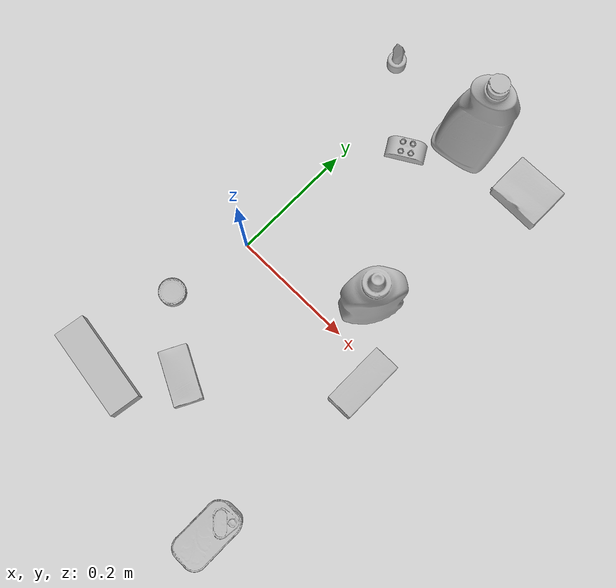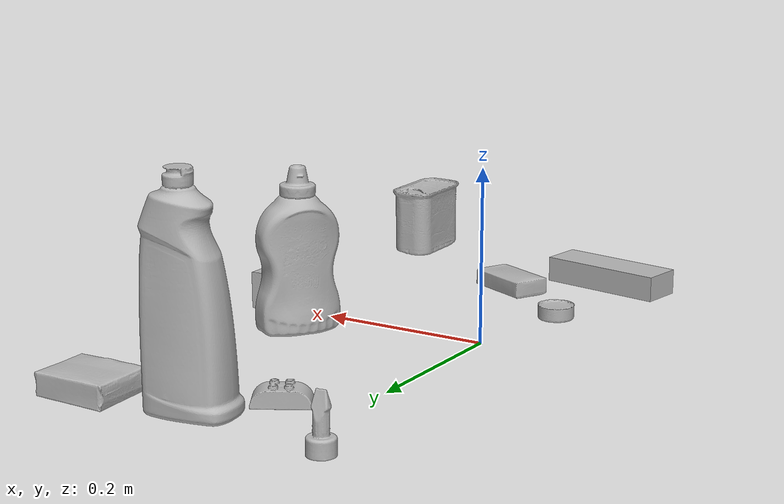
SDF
<sdf version="1.4">
  <world name="default">
    <light name="light1" type="point">
      <pose>0 0 1 0 0 0</pose>
      <diffuse>3 3 3 1</diffuse>
      <specular>3 3 3 1</specular>
    </light>
    <light name="light2" type="point">
      <pose>0 0.5 2 0 0 0</pose>
      <diffuse>1 1 1 1</diffuse>
      <specular>1 1 1 1</specular>
    </light>
    <light name="light3" type="point">
      <pose>0 0.5 2 0 0 0</pose>
      <diffuse>3 3 3 1</diffuse>
      <specular>3 3 3 1</specular>
    </light>
    <scene>
      <ambient>0.7 0.7 0.7</ambient>
    </scene>
    <model name="bottle1">
      <link name="link_bottle1">
        <collision name="default">
          <geometry>
            <mesh>
              <uri>model://bleach_cleanser/collision_meshes/collision.obj</uri>
              <scale>1.0 1.0 1.0</scale>
            </mesh>
          </geometry>
          <surface>
            <friction>
              <ode>
                <mu>0.5</mu>
                <mu2>0.5</mu2>
              </ode>
            </friction>
          <contact>
        <ode>
            <max_vel>0</max_vel>
            <min_depth>0.0001</min_depth>
            <kp>1e8</kp>
        </ode>
    </contact></surface>
        </collision>
        <visual name="default">
          <geometry>
            <mesh>
              <uri>model://bleach_cleanser/visual_meshes/visual.dae</uri>
              <scale>1.0 1.0 1.0</scale>
            </mesh>
          </geometry>
        </visual>
        <inertial>
          <mass>0.5324875712394714</mass>
          <pose>0.00012193183647468686 0.0037838825955986977 -0.024421609938144684 -0.07381669869164166 0.0004201168944593395 -0.0068750469260774934</pose>
          <inertia>
            <ixx>0.0025916947</ixx>
            <iyy>0.0024150796</iyy>
            <izz>0.00044311245</izz>
            <ixy>0</ixy>
            <ixz>0</ixz>
            <iyz>0</iyz>
          </inertia>
        </inertial>
      </link>
      <pose>0.13136859238147736 0.3542915880680084 0.12595191597938538 -0.0008428072421946863 0.005702842309115417 -1.4324684566417745</pose>
    </model>
    <model name="bottle2">
      <link name="link_bottle2">
        <collision name="default">
          <geometry>
            <mesh>
              <uri>model://mustard_bottle/collision_meshes/collision.obj</uri>
              <scale>1.0 1.0 1.0</scale>
            </mesh>
          </geometry>
          <surface>
            <friction>
              <ode>
                <mu>0.5</mu>
                <mu2>0.5</mu2>
              </ode>
            </friction>
          <contact>
        <ode>
            <max_vel>0</max_vel>
            <min_depth>0.0001</min_depth>
            <kp>1e8</kp>
        </ode>
    </contact></surface>
        </collision>
        <visual name="default">
          <geometry>
            <mesh>
              <uri>model://mustard_bottle/visual_meshes/visual.dae</uri>
              <scale>1.0 1.0 1.0</scale>
            </mesh>
          </geometry>
        </visual>
        <inertial>
          <mass>0.7762566804885864</mass>
          <pose>0.0005032453336752951 -0.0001564739941386506 -0.01747579127550125 0.0004182320844136383 0.0009465775961192733 0.024853776391442105</pose>
          <inertia>
            <ixx>0.0021555587</ixx>
            <iyy>0.0018913207</iyy>
            <izz>0.00056809856</izz>
            <ixy>0</ixy>
            <ixz>0</ixz>
            <iyz>0</iyz>
          </inertia>
        </inertial>
      </link>
      <pose>0.2023976743221283 0.0638095811009407 0.09583087265491486 -0.012050274721020875 -0.004889928032359437 2.570936115392344</pose>
    </model>
    <model name="toy1">
      <link name="link_toy1">
        <collision name="default">
          <geometry>
            <mesh>
              <uri>model://e_toy_airplane/collision_meshes/collision.obj</uri>
              <scale>1.0 1.0 1.0</scale>
            </mesh>
          </geometry>
          <surface>
            <friction>
              <ode>
                <mu>0.5</mu>
                <mu2>0.5</mu2>
              </ode>
            </friction>
          <contact>
        <ode>
            <max_vel>0</max_vel>
            <min_depth>0.0001</min_depth>
            <kp>1e8</kp>
        </ode>
    </contact></surface>
        </collision>
        <visual name="default">
          <geometry>
            <mesh>
              <uri>model://e_toy_airplane/visual_meshes/visual.dae</uri>
              <scale>1.0 1.0 1.0</scale>
            </mesh>
          </geometry>
        </visual>
        <inertial>
          <mass>0.01693064346909523</mass>
          <pose>0.00011740485206246376 -2.2482869098894298e-05 -0.011187203228473663 0.005518486263483037 0.009228306153066855 0.15041416456770357</pose>
          <inertia>
            <ixx>5.1674256e-06</ixx>
            <iyy>5.1145657e-06</iyy>
            <izz>1.5530146e-06</izz>
            <ixy>0</ixy>
            <ixz>0</ixz>
            <iyz>0</iyz>
          </inertia>
        </inertial>
      </link>
      <pose>-0.042435429990291595 0.38401249051094055 0.03321218863129616 6.398550062071993e-05 -9.31191259285759e-05 -1.5702898071601712</pose>
    </model>
    <model name="toy2">
      <link name="link_toy2">
        <collision name="default">
          <geometry>
            <mesh>
              <uri>model://a_lego_duplo/collision_meshes/collision.obj</uri>
              <scale>1.0 1.0 1.0</scale>
            </mesh>
          </geometry>
          <surface>
            <friction>
              <ode>
                <mu>0.5</mu>
                <mu2>0.5</mu2>
              </ode>
            </friction>
          <contact>
        <ode>
            <max_vel>0</max_vel>
            <min_depth>0.0001</min_depth>
            <kp>1e8</kp>
        </ode>
    </contact></surface>
        </collision>
        <visual name="default">
          <geometry>
            <mesh>
              <uri>model://a_lego_duplo/visual_meshes/visual.dae</uri>
              <scale>1.0 1.0 1.0</scale>
            </mesh>
          </geometry>
        </visual>
        <inertial>
          <mass>0.026311658322811127</mass>
          <pose>-0.000113377594971098 0.00018517566786613315 0.0003692609607242048 -0.014117022075399962 -0.00012566465015892618 6.142856652531641e-05</pose>
          <inertia>
            <ixx>3.3733654e-06</ixx>
            <iyy>7.557078e-06</iyy>
            <izz>9.361117e-06</izz>
            <ixy>0</ixy>
            <ixz>0</ixz>
            <iyz>0</iyz>
          </inertia>
        </inertial>
      </link>
      <pose>0.07083526998758316 0.2857438325881958 0.012111509218811989 2.2447910006010125e-05 -1.5411354163191618e-05 -2.6071252157675175</pose>
    </model>
    <model name="can1">
      <link name="link_can1">
        <collision name="default">
          <geometry>
            <mesh>
              <uri>model://tuna_fish_can/collision_meshes/collision.obj</uri>
              <scale>0.5 0.5 0.5</scale>
            </mesh>
          </geometry>
          <surface>
            <friction>
              <ode>
                <mu>0.5</mu>
                <mu2>0.5</mu2>
              </ode>
            </friction>
          <contact>
        <ode>
            <max_vel>0</max_vel>
            <min_depth>0.0001</min_depth>
            <kp>1e8</kp>
        </ode>
    </contact></surface>
        </collision>
        <visual name="default">
          <geometry>
            <mesh>
              <uri>model://tuna_fish_can/visual_meshes/visual.dae</uri>
              <scale>0.5 0.5 0.5</scale>
            </mesh>
          </geometry>
        </visual>
        <inertial>
          <mass>0.025987863540649414</mass>
          <pose>-2.0361601855256595e-05 -7.256298886204604e-06 -0.0005269025568850338 -0.0017944787689317097 0.0001716279666079131 0.24054509142506303</pose>
          <inertia>
            <ixx>3.5135977e-06</ixx>
            <iyy>3.4989534e-06</iyy>
            <izz>6.0122675e-06</izz>
            <ixy>0</ixy>
            <ixz>0</ixz>
            <iyz>0</iyz>
          </inertia>
        </inertial>
      </link>
      <pose>-0.02699550986289978 -0.13284467160701752 0.008519998751580715 1.2437002885781583e-08 -7.103842049791912e-09 -2.385520512466074</pose>
    </model>
    <model name="can2">
      <link name="link_can2">
        <collision name="default">
          <geometry>
            <mesh>
              <uri>model://potted_meat_can/collision_meshes/collision.obj</uri>
              <scale>1.0 1.0 1.0</scale>
            </mesh>
          </geometry>
          <surface>
            <friction>
              <ode>
                <mu>0.5</mu>
                <mu2>0.5</mu2>
              </ode>
            </friction>
          <contact>
        <ode>
            <max_vel>0</max_vel>
            <min_depth>0.0001</min_depth>
            <kp>1e8</kp>
        </ode>
    </contact></surface>
        </collision>
        <visual name="default">
          <geometry>
            <mesh>
              <uri>model://potted_meat_can/visual_meshes/visual.dae</uri>
              <scale>1.0 1.0 1.0</scale>
            </mesh>
          </geometry>
        </visual>
        <inertial>
          <mass>0.2732236087322235</mass>
          <pose>0.00022888141393195838 -5.989111741655506e-05 -0.0006367441383190453 -0.028093326615163196 -0.007232604646238421 0.015406262399643026</pose>
          <inertia>
            <ixx>0.0003514736</ixx>
            <iyy>0.00021354685</iyy>
            <izz>0.00025563012</izz>
            <ixy>0</ixy>
            <ixz>0</ixz>
            <iyz>0</iyz>
          </inertia>
        </inertial>
      </link>
      <pose>0.2708490192890167 -0.33845409750938416 0.04212801158428192 -1.0136229353163041e-08 -5.192708566471295e-07 3.1313806069600885</pose>
    </model>
    <model name="box1">
      <link name="link_box1">
        <collision name="default">
          <geometry>
            <mesh>
              <uri>model://gelatin_box/collision_meshes/collision.obj</uri>
              <scale>1.0 1.0 1.0</scale>
            </mesh>
          </geometry>
          <surface>
            <friction>
              <ode>
                <mu>0.5</mu>
                <mu2>0.5</mu2>
              </ode>
            </friction>
          <contact>
        <ode>
            <max_vel>0</max_vel>
            <min_depth>0.0001</min_depth>
            <kp>1e8</kp>
        </ode>
    </contact></surface>
        </collision>
        <visual name="default">
          <geometry>
            <mesh>
              <uri>model://gelatin_box/visual_meshes/visual.dae</uri>
              <scale>1.0 1.0 1.0</scale>
            </mesh>
          </geometry>
        </visual>
        <inertial>
          <mass>0.14974145591259003</mass>
          <pose>0.0004319618456065655 0.00011156871914863586 -0.0003640321083366871 -0.0010503719798216618 -0.004755819622564704 0.01644055760929568</pose>
          <inertia>
            <ixx>0.00010570526</ixx>
            <iyy>7.550471e-05</iyy>
            <izz>0.00016090693</izz>
            <ixy>0</ixy>
            <ixz>0</ixz>
            <iyz>0</iyz>
          </inertia>
        </inertial>
      </link>
      <pose>0.2547543942928314 0.36333224177360535 0.015168311074376106 0.005597449678708811 -0.007304567799158935 -1.5814757768768961</pose>
    </model>
    <model name="box2">
      <link name="link_box2">
        <collision name="default">
          <geometry>
            <mesh>
              <uri>model://sugar_box/collision_meshes/collision.obj</uri>
              <scale>0.5 0.5 0.5</scale>
            </mesh>
          </geometry>
          <surface>
            <friction>
              <ode>
                <mu>0.5</mu>
                <mu2>0.5</mu2>
              </ode>
            </friction>
          <contact>
        <ode>
            <max_vel>0</max_vel>
            <min_depth>0.0001</min_depth>
            <kp>1e8</kp>
        </ode>
    </contact></surface>
        </collision>
        <visual name="default">
          <geometry>
            <mesh>
              <uri>model://sugar_box/visual_meshes/visual.dae</uri>
              <scale>0.5 0.5 0.5</scale>
            </mesh>
          </geometry>
        </visual>
        <inertial>
          <mass>0.07143953442573547</mass>
          <pose>0.0005171863595023751 1.924554817378521e-05 -0.00018182402709499002 -0.0004046263588767038 0.0010506634057764815 0.0026153785560837986</pose>
          <inertia>
            <ixx>1.4880804e-05</ixx>
            <iyy>4.8097805e-05</iyy>
            <izz>5.757883e-05</izz>
            <ixy>0</ixy>
            <ixz>0</ixz>
            <iyz>0</iyz>
          </inertia>
        </inertial>
      </link>
      <pose>0.0748404935002327 -0.21315132081508636 0.011399301700294018 0.0007753861585181178 -0.023433286331594385 2.65763525734244</pose>
    </model>
    <model name="box3">
      <link name="link_box3">
        <collision name="default">
          <geometry>
            <mesh>
              <uri>model://jenga/collision_meshes/collision.obj</uri>
              <scale>1.0 1.0 1.0</scale>
            </mesh>
          </geometry>
          <surface>
            <friction>
              <ode>
                <mu>0.5</mu>
                <mu2>0.5</mu2>
              </ode>
            </friction>
          <contact>
        <ode>
            <max_vel>0</max_vel>
            <min_depth>0.0001</min_depth>
            <kp>1e8</kp>
        </ode>
    </contact></surface>
        </collision>
        <visual name="default">
          <geometry>
            <mesh>
              <uri>model://jenga/visual_meshes/visual.dae</uri>
              <scale>1.0 1.0 1.0</scale>
            </mesh>
          </geometry>
        </visual>
        <inertial>
          <mass>0.2564851939678192</mass>
          <pose>-2.502855807051674e-07 -0.00010250010382151231 -4.0923401684267446e-05 0.0 -7.342154049184251e-07 0.0</pose>
          <inertia>
            <ixx>7.097568e-05</ixx>
            <iyy>0.00048092927</iyy>
            <izz>0.0005134329</izz>
            <ixy>0</ixy>
            <ixz>0</ixz>
            <iyz>0</iyz>
          </inertia>
        </inertial>
      </link>
      <pose>-0.02323170192539692 -0.2894035875797272 0.01499999687075615 1.784183568080525e-08 2.4527019559310345e-09 -0.15712945798583583</pose>
    </model>
    <model name="box4">
      <link name="link_box4">
        <collision name="default">
          <geometry>
            <mesh>
              <uri>model://wood_block/collision_meshes/collision.obj</uri>
              <scale>0.5 0.5 0.5</scale>
            </mesh>
          </geometry>
          <surface>
            <friction>
              <ode>
                <mu>0.5</mu>
                <mu2>0.5</mu2>
              </ode>
            </friction>
          <contact>
        <ode>
            <max_vel>0</max_vel>
            <min_depth>0.0001</min_depth>
            <kp>1e8</kp>
        </ode>
    </contact></surface>
        </collision>
        <visual name="default">
          <geometry>
            <mesh>
              <uri>model://wood_block/visual_meshes/visual.dae</uri>
              <scale>0.5 0.5 0.5</scale>
            </mesh>
          </geometry>
        </visual>
        <inertial>
          <mass>0.2543213665485382</mass>
          <pose>-2.906657982748584e-06 -0.000285404734313488 0.00013204291462898254 -0.05220794665887619 -0.0051926956484831775 -0.006861378561045436</pose>
          <inertia>
            <ixx>8.508011e-05</ixx>
            <iyy>0.00026876814</iyy>
            <izz>0.00026776275</izz>
            <ixy>0</ixy>
            <ixz>0</ixz>
            <iyz>0</iyz>
          </inertia>
        </inertial>
      </link>
      <pose>0.2778911888599396 -0.03210073336958885 0.022629261016845703 -0.005208662674029115 0.005718775943518645 -1.5677052122759718</pose>
    </model>
  <physics type="ode">
      <max_contacts>50</max_contacts>
      <ode>
        <solver>
          <type>quick</type>
          <iters>75</iters>
        </solver>
        <constraints>
          <contact_max_correcting_vel>0</contact_max_correcting_vel>
          <contact_surface_layer>0</contact_surface_layer>
        </constraints>
      </ode>
    </physics></world>
</sdf>
